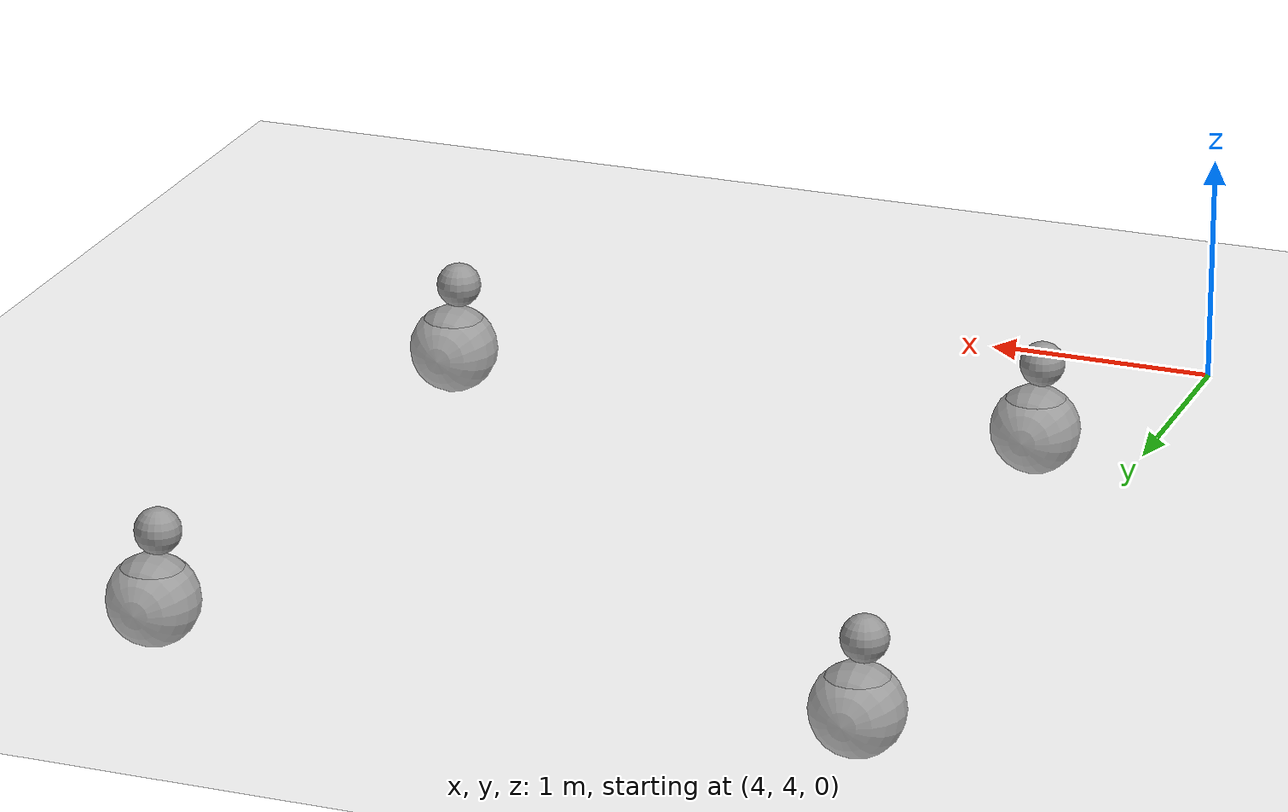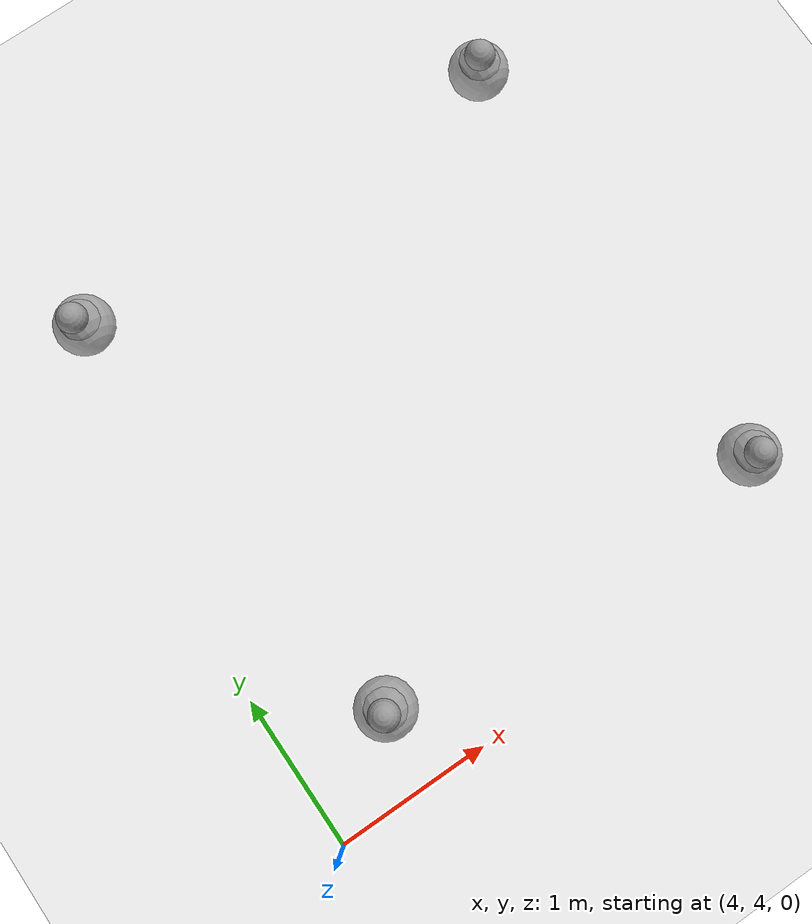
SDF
<sdf version="1.7">
 <world name="default">
  <model name="ground_plane">
   <static>1</static>
   <link name="link">
    <collision name="collision">
     <geometry><plane><normal>0 0 1</normal><size>100 100</size></plane></geometry>
     <surface>
      <contact><collide_bitmask>65535</collide_bitmask></contact>
      <friction><ode><mu>100</mu><mu2>50</mu2></ode></friction>
     </surface>
    </collision>
    <visual name="visual">
     <cast_shadows>0</cast_shadows>
     <geometry><plane><normal>0 0 1</normal><size>100 100</size></plane></geometry>
     <material>
      <script><uri>file://media/materials/scripts/gazebo.material</uri><name>Gazebo/Grey</name></script>
     </material>
    </visual>
   </link>
  </model>
  <model name="HumanoidRobot">
   <link name="link_1">
    <inertial>
     <mass>1</mass>
     <inertia><ixx>0.1</ixx><ixy>0</ixy><ixz>0</ixz><iyy>0.1</iyy><iyz>0</iyz><izz>0.1</izz></inertia>
    </inertial>
    <pose>0.01 0.01 -0.15 1.5707 -0 0</pose>
    <visual name="visual">
     <geometry><sphere><radius>0.2</radius></sphere></geometry>
     <material>
      <lighting>1</lighting>
      <script><uri>file://media/materials/scripts/gazebo.material</uri><name>Gazebo/Grey</name></script>
      <shader type="pixel"><normal_map>__default__</normal_map></shader>
      <ambient>0.3 0.3 0.3 1</ambient>
      <diffuse>0.7 0.7 0.7 1</diffuse>
      <specular>0.01 0.01 0.01 1</specular>
      <emissive>0 0 0 1</emissive>
     </material>
    </visual>
    <collision name="collision">
     <geometry><sphere><radius>0.2</radius></sphere></geometry>
     <surface>
      <friction>
       <ode><mu>1</mu><mu2>1</mu2><fdir1>0 0 0</fdir1><slip1>0</slip1><slip2>0</slip2></ode>
       <torsional>
        <coefficient>1</coefficient>
        <patch_radius>0</patch_radius>
        <surface_radius>0</surface_radius>
        <use_patch_radius>1</use_patch_radius>
        <ode><slip>0</slip></ode>
       </torsional>
      </friction>
      <bounce><restitution_coefficient>0</restitution_coefficient><threshold>1e+06</threshold></bounce>
      <contact>
       <collide_without_contact>0</collide_without_contact>
       <collide_without_contact_bitmask>1</collide_without_contact_bitmask>
       <collide_bitmask>1</collide_bitmask>
       <ode>
        <soft_cfm>0</soft_cfm>
        <soft_erp>0.2</soft_erp>
        <kp>1e+13</kp>
        <kd>1</kd>
        <max_vel>0.01</max_vel>
        <min_depth>0</min_depth>
       </ode>
       <bullet>
        <split_impulse>1</split_impulse>
        <split_impulse_penetration_threshold>-0.01</split_impulse_penetration_threshold>
        <soft_cfm>0</soft_cfm>
        <soft_erp>0.2</soft_erp>
        <kp>1e+13</kp>
        <kd>1</kd>
       </bullet>
      </contact>
     </surface>
    </collision>
   </link>
   <link name="link_3">
    <inertial>
     <mass>1</mass>
     <inertia><ixx>0.1</ixx><ixy>0</ixy><ixz>0</ixz><iyy>0.1</iyy><iyz>0</iyz><izz>0.1</izz></inertia>
    </inertial>
    <pose>-0.01 -0.01 0.15 0 -0 0</pose>
    <visual name="visual">
     <geometry><sphere><radius>0.1</radius></sphere></geometry>
     <material>
      <lighting>1</lighting>
      <script><uri>file://media/materials/scripts/gazebo.material</uri><name>Gazebo/Grey</name></script>
      <shader type="pixel"><normal_map>__default__</normal_map></shader>
      <ambient>0.3 0.3 0.3 1</ambient>
      <diffuse>0.7 0.7 0.7 1</diffuse>
      <specular>0.01 0.01 0.01 1</specular>
      <emissive>0 0 0 1</emissive>
     </material>
    </visual>
    <collision name="collision">
     <geometry><sphere><radius>0.1</radius></sphere></geometry>
     <surface>
      <friction>
       <ode><mu>1</mu><mu2>1</mu2><fdir1>0 0 0</fdir1><slip1>0</slip1><slip2>0</slip2></ode>
       <torsional>
        <coefficient>1</coefficient>
        <patch_radius>0</patch_radius>
        <surface_radius>0</surface_radius>
        <use_patch_radius>1</use_patch_radius>
        <ode><slip>0</slip></ode>
       </torsional>
      </friction>
      <bounce><restitution_coefficient>0</restitution_coefficient><threshold>1e+06</threshold></bounce>
      <contact>
       <collide_without_contact>0</collide_without_contact>
       <collide_without_contact_bitmask>1</collide_without_contact_bitmask>
       <collide_bitmask>1</collide_bitmask>
       <ode>
        <soft_cfm>0</soft_cfm>
        <soft_erp>0.2</soft_erp>
        <kp>1e+13</kp>
        <kd>1</kd>
        <max_vel>0.01</max_vel>
        <min_depth>0</min_depth>
       </ode>
       <bullet>
        <split_impulse>1</split_impulse>
        <split_impulse_penetration_threshold>-0.01</split_impulse_penetration_threshold>
        <soft_cfm>0</soft_cfm>
        <soft_erp>0.2</soft_erp>
        <kp>1e+13</kp>
        <kd>1</kd>
       </bullet>
      </contact>
     </surface>
    </collision>
   </link>
   <joint name="link_1_JOINT_0" type="revolute">
    <parent>link_1</parent>
    <child>link_3</child>
    <axis>
     <xyz>0 1 0</xyz>
     <limit>
      <lower>-1.79769e+308</lower>
      <upper>1.79769e+308</upper>
      <effort>-1</effort>
      <velocity>-1</velocity>
     </limit>
     <dynamics>
      <spring_reference>0</spring_reference>
      <spring_stiffness>0</spring_stiffness>
      <damping>0</damping>
     </dynamics>
    </axis>
    <physics>
     <ode><limit><cfm>0</cfm><erp>0.2</erp></limit><suspension><cfm>0</cfm><erp>0.2</erp></suspension></ode>
    </physics>
   </joint>
   <static>0</static>
   <pose>4.62677 4.49538 0 0 -0 0</pose>
  </model>
  <model name="HumanoidRobot_1">
   <link name="link_1">
    <inertial>
     <mass>1</mass>
     <inertia><ixx>0.1</ixx><ixy>0</ixy><ixz>0</ixz><iyy>0.1</iyy><iyz>0</iyz><izz>0.1</izz></inertia>
    </inertial>
    <pose>0.01 0.01 -0.15 1.5707 -0 0</pose>
    <visual name="visual">
     <geometry><sphere><radius>0.2</radius></sphere></geometry>
     <material>
      <lighting>1</lighting>
      <script><uri>file://media/materials/scripts/gazebo.material</uri><name>Gazebo/Grey</name></script>
      <shader type="pixel"><normal_map>__default__</normal_map></shader>
      <ambient>0.3 0.3 0.3 1</ambient>
      <diffuse>0.7 0.7 0.7 1</diffuse>
      <specular>0.01 0.01 0.01 1</specular>
      <emissive>0 0 0 1</emissive>
     </material>
    </visual>
    <collision name="collision">
     <geometry><sphere><radius>0.2</radius></sphere></geometry>
     <surface>
      <friction>
       <ode><mu>1</mu><mu2>1</mu2><fdir1>0 0 0</fdir1><slip1>0</slip1><slip2>0</slip2></ode>
       <torsional>
        <coefficient>1</coefficient>
        <patch_radius>0</patch_radius>
        <surface_radius>0</surface_radius>
        <use_patch_radius>1</use_patch_radius>
        <ode><slip>0</slip></ode>
       </torsional>
      </friction>
      <bounce><restitution_coefficient>0</restitution_coefficient><threshold>1e+06</threshold></bounce>
      <contact>
       <collide_without_contact>0</collide_without_contact>
       <collide_without_contact_bitmask>1</collide_without_contact_bitmask>
       <collide_bitmask>1</collide_bitmask>
       <ode>
        <soft_cfm>0</soft_cfm>
        <soft_erp>0.2</soft_erp>
        <kp>1e+13</kp>
        <kd>1</kd>
        <max_vel>0.01</max_vel>
        <min_depth>0</min_depth>
       </ode>
       <bullet>
        <split_impulse>1</split_impulse>
        <split_impulse_penetration_threshold>-0.01</split_impulse_penetration_threshold>
        <soft_cfm>0</soft_cfm>
        <soft_erp>0.2</soft_erp>
        <kp>1e+13</kp>
        <kd>1</kd>
       </bullet>
      </contact>
     </surface>
    </collision>
   </link>
   <link name="link_3">
    <inertial>
     <mass>1</mass>
     <inertia><ixx>0.1</ixx><ixy>0</ixy><ixz>0</ixz><iyy>0.1</iyy><iyz>0</iyz><izz>0.1</izz></inertia>
    </inertial>
    <pose>-0.01 -0.01 0.15 0 -0 0</pose>
    <visual name="visual">
     <geometry><sphere><radius>0.1</radius></sphere></geometry>
     <material>
      <lighting>1</lighting>
      <script><uri>file://media/materials/scripts/gazebo.material</uri><name>Gazebo/Grey</name></script>
      <shader type="pixel"><normal_map>__default__</normal_map></shader>
      <ambient>0.3 0.3 0.3 1</ambient>
      <diffuse>0.7 0.7 0.7 1</diffuse>
      <specular>0.01 0.01 0.01 1</specular>
      <emissive>0 0 0 1</emissive>
     </material>
    </visual>
    <collision name="collision">
     <geometry><sphere><radius>0.1</radius></sphere></geometry>
     <surface>
      <friction>
       <ode><mu>1</mu><mu2>1</mu2><fdir1>0 0 0</fdir1><slip1>0</slip1><slip2>0</slip2></ode>
       <torsional>
        <coefficient>1</coefficient>
        <patch_radius>0</patch_radius>
        <surface_radius>0</surface_radius>
        <use_patch_radius>1</use_patch_radius>
        <ode><slip>0</slip></ode>
       </torsional>
      </friction>
      <bounce><restitution_coefficient>0</restitution_coefficient><threshold>1e+06</threshold></bounce>
      <contact>
       <collide_without_contact>0</collide_without_contact>
       <collide_without_contact_bitmask>1</collide_without_contact_bitmask>
       <collide_bitmask>1</collide_bitmask>
       <ode>
        <soft_cfm>0</soft_cfm>
        <soft_erp>0.2</soft_erp>
        <kp>1e+13</kp>
        <kd>1</kd>
        <max_vel>0.01</max_vel>
        <min_depth>0</min_depth>
       </ode>
       <bullet>
        <split_impulse>1</split_impulse>
        <split_impulse_penetration_threshold>-0.01</split_impulse_penetration_threshold>
        <soft_cfm>0</soft_cfm>
        <soft_erp>0.2</soft_erp>
        <kp>1e+13</kp>
        <kd>1</kd>
       </bullet>
      </contact>
     </surface>
    </collision>
   </link>
   <joint name="link_1_JOINT_0" type="revolute">
    <parent>link_1</parent>
    <child>link_3</child>
    <axis>
     <xyz>0 1 0</xyz>
     <limit>
      <lower>-1.79769e+308</lower>
      <upper>1.79769e+308</upper>
      <effort>-1</effort>
      <velocity>-1</velocity>
     </limit>
     <dynamics>
      <spring_reference>0</spring_reference>
      <spring_stiffness>0</spring_stiffness>
      <damping>0</damping>
     </dynamics>
    </axis>
    <physics>
     <ode><limit><cfm>0</cfm><erp>0.2</erp></limit><suspension><cfm>0</cfm><erp>0.2</erp></suspension></ode>
    </physics>
   </joint>
   <static>0</static>
   <pose>4.38707 7.56328 0 0 -0 0</pose>
  </model>
  <model name="HumanoidRobot_2">
   <link name="link_1">
    <inertial>
     <mass>1</mass>
     <inertia><ixx>0.1</ixx><ixy>0</ixy><ixz>0</ixz><iyy>0.1</iyy><iyz>0</iyz><izz>0.1</izz></inertia>
    </inertial>
    <pose>0.01 0.01 -0.15 1.5707 -0 0</pose>
    <visual name="visual">
     <geometry><sphere><radius>0.2</radius></sphere></geometry>
     <material>
      <lighting>1</lighting>
      <script><uri>file://media/materials/scripts/gazebo.material</uri><name>Gazebo/Grey</name></script>
      <shader type="pixel"><normal_map>__default__</normal_map></shader>
      <ambient>0.3 0.3 0.3 1</ambient>
      <diffuse>0.7 0.7 0.7 1</diffuse>
      <specular>0.01 0.01 0.01 1</specular>
      <emissive>0 0 0 1</emissive>
     </material>
    </visual>
    <collision name="collision">
     <geometry><sphere><radius>0.2</radius></sphere></geometry>
     <surface>
      <friction>
       <ode><mu>1</mu><mu2>1</mu2><fdir1>0 0 0</fdir1><slip1>0</slip1><slip2>0</slip2></ode>
       <torsional>
        <coefficient>1</coefficient>
        <patch_radius>0</patch_radius>
        <surface_radius>0</surface_radius>
        <use_patch_radius>1</use_patch_radius>
        <ode><slip>0</slip></ode>
       </torsional>
      </friction>
      <bounce><restitution_coefficient>0</restitution_coefficient><threshold>1e+06</threshold></bounce>
      <contact>
       <collide_without_contact>0</collide_without_contact>
       <collide_without_contact_bitmask>1</collide_without_contact_bitmask>
       <collide_bitmask>1</collide_bitmask>
       <ode>
        <soft_cfm>0</soft_cfm>
        <soft_erp>0.2</soft_erp>
        <kp>1e+13</kp>
        <kd>1</kd>
        <max_vel>0.01</max_vel>
        <min_depth>0</min_depth>
       </ode>
       <bullet>
        <split_impulse>1</split_impulse>
        <split_impulse_penetration_threshold>-0.01</split_impulse_penetration_threshold>
        <soft_cfm>0</soft_cfm>
        <soft_erp>0.2</soft_erp>
        <kp>1e+13</kp>
        <kd>1</kd>
       </bullet>
      </contact>
     </surface>
    </collision>
   </link>
   <link name="link_3">
    <inertial>
     <mass>1</mass>
     <inertia><ixx>0.1</ixx><ixy>0</ixy><ixz>0</ixz><iyy>0.1</iyy><iyz>0</iyz><izz>0.1</izz></inertia>
    </inertial>
    <pose>-0.01 -0.01 0.15 0 -0 0</pose>
    <visual name="visual">
     <geometry><sphere><radius>0.1</radius></sphere></geometry>
     <material>
      <lighting>1</lighting>
      <script><uri>file://media/materials/scripts/gazebo.material</uri><name>Gazebo/Grey</name></script>
      <shader type="pixel"><normal_map>__default__</normal_map></shader>
      <ambient>0.3 0.3 0.3 1</ambient>
      <diffuse>0.7 0.7 0.7 1</diffuse>
      <specular>0.01 0.01 0.01 1</specular>
      <emissive>0 0 0 1</emissive>
     </material>
    </visual>
    <collision name="collision">
     <geometry><sphere><radius>0.1</radius></sphere></geometry>
     <surface>
      <friction>
       <ode><mu>1</mu><mu2>1</mu2><fdir1>0 0 0</fdir1><slip1>0</slip1><slip2>0</slip2></ode>
       <torsional>
        <coefficient>1</coefficient>
        <patch_radius>0</patch_radius>
        <surface_radius>0</surface_radius>
        <use_patch_radius>1</use_patch_radius>
        <ode><slip>0</slip></ode>
       </torsional>
      </friction>
      <bounce><restitution_coefficient>0</restitution_coefficient><threshold>1e+06</threshold></bounce>
      <contact>
       <collide_without_contact>0</collide_without_contact>
       <collide_without_contact_bitmask>1</collide_without_contact_bitmask>
       <collide_bitmask>1</collide_bitmask>
       <ode>
        <soft_cfm>0</soft_cfm>
        <soft_erp>0.2</soft_erp>
        <kp>1e+13</kp>
        <kd>1</kd>
        <max_vel>0.01</max_vel>
        <min_depth>0</min_depth>
       </ode>
       <bullet>
        <split_impulse>1</split_impulse>
        <split_impulse_penetration_threshold>-0.01</split_impulse_penetration_threshold>
        <soft_cfm>0</soft_cfm>
        <soft_erp>0.2</soft_erp>
        <kp>1e+13</kp>
        <kd>1</kd>
       </bullet>
      </contact>
     </surface>
    </collision>
   </link>
   <joint name="link_1_JOINT_0" type="revolute">
    <parent>link_1</parent>
    <child>link_3</child>
    <axis>
     <xyz>0 1 0</xyz>
     <limit>
      <lower>-1.79769e+308</lower>
      <upper>1.79769e+308</upper>
      <effort>-1</effort>
      <velocity>-1</velocity>
     </limit>
     <dynamics>
      <spring_reference>0</spring_reference>
      <spring_stiffness>0</spring_stiffness>
      <damping>0</damping>
     </dynamics>
    </axis>
    <physics>
     <ode><limit><cfm>0</cfm><erp>0.2</erp></limit><suspension><cfm>0</cfm><erp>0.2</erp></suspension></ode>
    </physics>
   </joint>
   <static>0</static>
   <pose>7.4503 7.55985 0 0 -0 0</pose>
  </model>
  <model name="HumanoidRobot_3">
   <link name="link_1">
    <inertial>
     <mass>1</mass>
     <inertia><ixx>0.1</ixx><ixy>0</ixy><ixz>0</ixz><iyy>0.1</iyy><iyz>0</iyz><izz>0.1</izz></inertia>
    </inertial>
    <pose>0.01 0.01 -0.15 1.5707 -0 0</pose>
    <visual name="visual">
     <geometry><sphere><radius>0.2</radius></sphere></geometry>
     <material>
      <lighting>1</lighting>
      <script><uri>file://media/materials/scripts/gazebo.material</uri><name>Gazebo/Grey</name></script>
      <shader type="pixel"><normal_map>__default__</normal_map></shader>
      <ambient>0.3 0.3 0.3 1</ambient>
      <diffuse>0.7 0.7 0.7 1</diffuse>
      <specular>0.01 0.01 0.01 1</specular>
      <emissive>0 0 0 1</emissive>
     </material>
    </visual>
    <collision name="collision">
     <geometry><sphere><radius>0.2</radius></sphere></geometry>
     <surface>
      <friction>
       <ode><mu>1</mu><mu2>1</mu2><fdir1>0 0 0</fdir1><slip1>0</slip1><slip2>0</slip2></ode>
       <torsional>
        <coefficient>1</coefficient>
        <patch_radius>0</patch_radius>
        <surface_radius>0</surface_radius>
        <use_patch_radius>1</use_patch_radius>
        <ode><slip>0</slip></ode>
       </torsional>
      </friction>
      <bounce><restitution_coefficient>0</restitution_coefficient><threshold>1e+06</threshold></bounce>
      <contact>
       <collide_without_contact>0</collide_without_contact>
       <collide_without_contact_bitmask>1</collide_without_contact_bitmask>
       <collide_bitmask>1</collide_bitmask>
       <ode>
        <soft_cfm>0</soft_cfm>
        <soft_erp>0.2</soft_erp>
        <kp>1e+13</kp>
        <kd>1</kd>
        <max_vel>0.01</max_vel>
        <min_depth>0</min_depth>
       </ode>
       <bullet>
        <split_impulse>1</split_impulse>
        <split_impulse_penetration_threshold>-0.01</split_impulse_penetration_threshold>
        <soft_cfm>0</soft_cfm>
        <soft_erp>0.2</soft_erp>
        <kp>1e+13</kp>
        <kd>1</kd>
       </bullet>
      </contact>
     </surface>
    </collision>
   </link>
   <link name="link_3">
    <inertial>
     <mass>1</mass>
     <inertia><ixx>0.1</ixx><ixy>0</ixy><ixz>0</ixz><iyy>0.1</iyy><iyz>0</iyz><izz>0.1</izz></inertia>
    </inertial>
    <pose>-0.01 -0.01 0.15 0 -0 0</pose>
    <visual name="visual">
     <geometry><sphere><radius>0.1</radius></sphere></geometry>
     <material>
      <lighting>1</lighting>
      <script><uri>file://media/materials/scripts/gazebo.material</uri><name>Gazebo/Grey</name></script>
      <shader type="pixel"><normal_map>__default__</normal_map></shader>
      <ambient>0.3 0.3 0.3 1</ambient>
      <diffuse>0.7 0.7 0.7 1</diffuse>
      <specular>0.01 0.01 0.01 1</specular>
      <emissive>0 0 0 1</emissive>
     </material>
    </visual>
    <collision name="collision">
     <geometry><sphere><radius>0.1</radius></sphere></geometry>
     <surface>
      <friction>
       <ode><mu>1</mu><mu2>1</mu2><fdir1>0 0 0</fdir1><slip1>0</slip1><slip2>0</slip2></ode>
       <torsional>
        <coefficient>1</coefficient>
        <patch_radius>0</patch_radius>
        <surface_radius>0</surface_radius>
        <use_patch_radius>1</use_patch_radius>
        <ode><slip>0</slip></ode>
       </torsional>
      </friction>
      <bounce><restitution_coefficient>0</restitution_coefficient><threshold>1e+06</threshold></bounce>
      <contact>
       <collide_without_contact>0</collide_without_contact>
       <collide_without_contact_bitmask>1</collide_without_contact_bitmask>
       <collide_bitmask>1</collide_bitmask>
       <ode>
        <soft_cfm>0</soft_cfm>
        <soft_erp>0.2</soft_erp>
        <kp>1e+13</kp>
        <kd>1</kd>
        <max_vel>0.01</max_vel>
        <min_depth>0</min_depth>
       </ode>
       <bullet>
        <split_impulse>1</split_impulse>
        <split_impulse_penetration_threshold>-0.01</split_impulse_penetration_threshold>
        <soft_cfm>0</soft_cfm>
        <soft_erp>0.2</soft_erp>
        <kp>1e+13</kp>
        <kd>1</kd>
       </bullet>
      </contact>
     </surface>
    </collision>
   </link>
   <joint name="link_1_JOINT_0" type="revolute">
    <parent>link_1</parent>
    <child>link_3</child>
    <axis>
     <xyz>0 1 0</xyz>
     <limit>
      <lower>-1.79769e+308</lower>
      <upper>1.79769e+308</upper>
      <effort>-1</effort>
      <velocity>-1</velocity>
     </limit>
     <dynamics>
      <spring_reference>0</spring_reference>
      <spring_stiffness>0</spring_stiffness>
      <damping>0</damping>
     </dynamics>
    </axis>
    <physics>
     <ode><limit><cfm>0</cfm><erp>0.2</erp></limit><suspension><cfm>0</cfm><erp>0.2</erp></suspension></ode>
    </physics>
   </joint>
   <static>0</static>
   <pose>7.38378 4.494 0 0 -0 0</pose>
  </model>
 </world>
</sdf>
